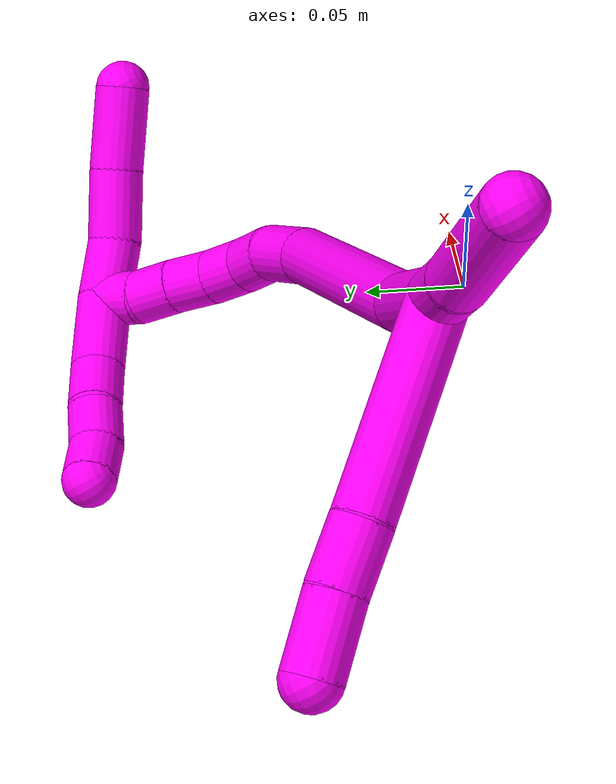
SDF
<sdf version="1.7">
 <world name="default">
  <model name="10">
   <static>0</static>
   <link name="10">
    <collision name="collision-cylinder-e_1_2_8">
     <pose>-0.020222 -0.029259 -0.027686 2.32857 -0.465261 -1.00623</pose>
     <geometry><cylinder><radius>0.0125</radius><length>0.090144</length></cylinder></geometry>
     <surface>
      <friction><ode><mu>1.16</mu><mu2>1.16</mu2><slip1>0</slip1><slip2>0</slip2></ode></friction>
      <contact><ode><kp>1e+06</kp><kd>1</kd><max_vel>0</max_vel><min_depth>0.001</min_depth></ode></contact>
     </surface>
    </collision>
    <visual name="visual-cylinder-e_1_2_8">
     <pose>-0.020222 -0.029259 -0.027686 2.32857 -0.465261 -1.00623</pose>
     <geometry><cylinder><radius>0.0125</radius><length>0.090144</length></cylinder></geometry>
     <material><ambient>1 0 0.964706 1</ambient></material>
    </visual>
    <collision name="collision-cylinder-e_2_8_9">
     <pose>-0.045543 -0.067481 -0.064454 2.36278 -0.38018 -0.876895</pose>
     <geometry><cylinder><radius>0.0125</radius><length>0.027485</length></cylinder></geometry>
     <surface>
      <friction><ode><mu>1.16</mu><mu2>1.16</mu2><slip1>0</slip1><slip2>0</slip2></ode></friction>
      <contact><ode><kp>1e+06</kp><kd>1</kd><max_vel>0</max_vel><min_depth>0.001</min_depth></ode></contact>
     </surface>
    </collision>
    <visual name="visual-cylinder-e_2_8_9">
     <pose>-0.045543 -0.067481 -0.064454 2.36278 -0.38018 -0.876895</pose>
     <geometry><cylinder><radius>0.0125</radius><length>0.027485</length></cylinder></geometry>
     <material><ambient>1 0 0.964706 1</ambient></material>
    </visual>
    <collision name="collision-cylinder-e_3_9_6">
     <pose>-0.056159 -0.087927 -0.083523 2.28668 -0.34777 -0.736062</pose>
     <geometry><cylinder><radius>0.0125</radius><length>0.032371</length></cylinder></geometry>
     <surface>
      <friction><ode><mu>1.16</mu><mu2>1.16</mu2><slip1>0</slip1><slip2>0</slip2></ode></friction>
      <contact><ode><kp>1e+06</kp><kd>1</kd><max_vel>0</max_vel><min_depth>0.001</min_depth></ode></contact>
     </surface>
    </collision>
    <visual name="visual-cylinder-e_3_9_6">
     <pose>-0.056159 -0.087927 -0.083523 2.28668 -0.34777 -0.736062</pose>
     <geometry><cylinder><radius>0.0125</radius><length>0.032371</length></cylinder></geometry>
     <material><ambient>1 0 0.964706 1</ambient></material>
    </visual>
    <collision name="collision-cylinder-e_1_2_10">
     <pose>-0.013634 0.001023 0.007434 -0.136754 -1.06764 0.080912</pose>
     <geometry><cylinder><radius>0.0125</radius><length>0.031127</length></cylinder></geometry>
     <surface>
      <friction><ode><mu>1.16</mu><mu2>1.16</mu2><slip1>0</slip1><slip2>0</slip2></ode></friction>
      <contact><ode><kp>1e+06</kp><kd>1</kd><max_vel>0</max_vel><min_depth>0.001</min_depth></ode></contact>
     </surface>
    </collision>
    <visual name="visual-cylinder-e_1_2_10">
     <pose>-0.013634 0.001023 0.007434 -0.136754 -1.06764 0.080912</pose>
     <geometry><cylinder><radius>0.0125</radius><length>0.031127</length></cylinder></geometry>
     <material><ambient>1 0 0.964706 1</ambient></material>
    </visual>
    <collision name="collision-cylinder-e_2_10_5">
     <pose>-0.054788 0.008218 0.03463 -0.30273 -0.925815 0.151957</pose>
     <geometry><cylinder><radius>0.0125</radius><length>0.068873</length></cylinder></geometry>
     <surface>
      <friction><ode><mu>1.16</mu><mu2>1.16</mu2><slip1>0</slip1><slip2>0</slip2></ode></friction>
      <contact><ode><kp>1e+06</kp><kd>1</kd><max_vel>0</max_vel><min_depth>0.001</min_depth></ode></contact>
     </surface>
    </collision>
    <visual name="visual-cylinder-e_2_10_5">
     <pose>-0.054788 0.008218 0.03463 -0.30273 -0.925815 0.151957</pose>
     <geometry><cylinder><radius>0.0125</radius><length>0.068873</length></cylinder></geometry>
     <material><ambient>1 0 0.964706 1</ambient></material>
    </visual>
    <collision name="collision-cylinder-e_1_2_11">
     <pose>0.027614 0.002338 -0.012645 -2.95877 1.13499 -2.85594</pose>
     <geometry><cylinder><radius>0.0125</radius><length>0.060923</length></cylinder></geometry>
     <surface>
      <friction><ode><mu>1.16</mu><mu2>1.16</mu2><slip1>0</slip1><slip2>0</slip2></ode></friction>
      <contact><ode><kp>1e+06</kp><kd>1</kd><max_vel>0</max_vel><min_depth>0.001</min_depth></ode></contact>
     </surface>
    </collision>
    <visual name="visual-cylinder-e_1_2_11">
     <pose>0.027614 0.002338 -0.012645 -2.95877 1.13499 -2.85594</pose>
     <geometry><cylinder><radius>0.0125</radius><length>0.060923</length></cylinder></geometry>
     <material><ambient>1 0 0.964706 1</ambient></material>
    </visual>
    <collision name="collision-cylinder-e_2_11_12">
     <pose>0.101472 0.024214 -0.049982 -2.47218 0.973002 -1.97823</pose>
     <geometry><cylinder><radius>0.0125</radius><length>0.111891</length></cylinder></geometry>
     <surface>
      <friction><ode><mu>1.16</mu><mu2>1.16</mu2><slip1>0</slip1><slip2>0</slip2></ode></friction>
      <contact><ode><kp>1e+06</kp><kd>1</kd><max_vel>0</max_vel><min_depth>0.001</min_depth></ode></contact>
     </surface>
    </collision>
    <visual name="visual-cylinder-e_2_11_12">
     <pose>0.101472 0.024214 -0.049982 -2.47218 0.973002 -1.97823</pose>
     <geometry><cylinder><radius>0.0125</radius><length>0.111891</length></cylinder></geometry>
     <material><ambient>1 0 0.964706 1</ambient></material>
    </visual>
    <collision name="collision-cylinder-e_3_12_13">
     <pose>0.156855 0.048428 -0.083539 -2.65633 0.73936 -2.00475</pose>
     <geometry><cylinder><radius>0.0125</radius><length>0.027128</length></cylinder></geometry>
     <surface>
      <friction><ode><mu>1.16</mu><mu2>1.16</mu2><slip1>0</slip1><slip2>0</slip2></ode></friction>
      <contact><ode><kp>1e+06</kp><kd>1</kd><max_vel>0</max_vel><min_depth>0.001</min_depth></ode></contact>
     </surface>
    </collision>
    <visual name="visual-cylinder-e_3_12_13">
     <pose>0.156855 0.048428 -0.083539 -2.65633 0.73936 -2.00475</pose>
     <geometry><cylinder><radius>0.0125</radius><length>0.027128</length></cylinder></geometry>
     <material><ambient>1 0 0.964706 1</ambient></material>
    </visual>
    <collision name="collision-cylinder-e_4_13_14">
     <pose>0.172044 0.053824 -0.100362 -3.05114 0.648019 -2.87369</pose>
     <geometry><cylinder><radius>0.0125</radius><length>0.020045</length></cylinder></geometry>
     <surface>
      <friction><ode><mu>1.16</mu><mu2>1.16</mu2><slip1>0</slip1><slip2>0</slip2></ode></friction>
      <contact><ode><kp>1e+06</kp><kd>1</kd><max_vel>0</max_vel><min_depth>0.001</min_depth></ode></contact>
     </surface>
    </collision>
    <visual name="visual-cylinder-e_4_13_14">
     <pose>0.172044 0.053824 -0.100362 -3.05114 0.648019 -2.87369</pose>
     <geometry><cylinder><radius>0.0125</radius><length>0.020045</length></cylinder></geometry>
     <material><ambient>1 0 0.964706 1</ambient></material>
    </visual>
    <collision name="collision-cylinder-e_5_14_15">
     <pose>0.181623 0.05599 -0.117566 -2.98665 0.360607 -2.33638</pose>
     <geometry><cylinder><radius>0.0125</radius><length>0.020002</length></cylinder></geometry>
     <surface>
      <friction><ode><mu>1.16</mu><mu2>1.16</mu2><slip1>0</slip1><slip2>0</slip2></ode></friction>
      <contact><ode><kp>1e+06</kp><kd>1</kd><max_vel>0</max_vel><min_depth>0.001</min_depth></ode></contact>
     </surface>
    </collision>
    <visual name="visual-cylinder-e_5_14_15">
     <pose>0.181623 0.05599 -0.117566 -2.98665 0.360607 -2.33638</pose>
     <geometry><cylinder><radius>0.0125</radius><length>0.020002</length></cylinder></geometry>
     <material><ambient>1 0 0.964706 1</ambient></material>
    </visual>
    <collision name="collision-cylinder-e_6_15_16">
     <pose>0.186915 0.059856 -0.136354 -2.89309 0.177229 -1.23662</pose>
     <geometry><cylinder><radius>0.0125</radius><length>0.020004</length></cylinder></geometry>
     <surface>
      <friction><ode><mu>1.16</mu><mu2>1.16</mu2><slip1>0</slip1><slip2>0</slip2></ode></friction>
      <contact><ode><kp>1e+06</kp><kd>1</kd><max_vel>0</max_vel><min_depth>0.001</min_depth></ode></contact>
     </surface>
    </collision>
    <visual name="visual-cylinder-e_6_15_16">
     <pose>0.186915 0.059856 -0.136354 -2.89309 0.177229 -1.23662</pose>
     <geometry><cylinder><radius>0.0125</radius><length>0.020004</length></cylinder></geometry>
     <material><ambient>1 0 0.964706 1</ambient></material>
    </visual>
    <collision name="collision-cylinder-e_7_16_17">
     <pose>0.190607 0.064148 -0.155531 -2.94986 0.194078 -1.58305</pose>
     <geometry><cylinder><radius>0.0125</radius><length>0.020002</length></cylinder></geometry>
     <surface>
      <friction><ode><mu>1.16</mu><mu2>1.16</mu2><slip1>0</slip1><slip2>0</slip2></ode></friction>
      <contact><ode><kp>1e+06</kp><kd>1</kd><max_vel>0</max_vel><min_depth>0.001</min_depth></ode></contact>
     </surface>
    </collision>
    <visual name="visual-cylinder-e_7_16_17">
     <pose>0.190607 0.064148 -0.155531 -2.94986 0.194078 -1.58305</pose>
     <geometry><cylinder><radius>0.0125</radius><length>0.020002</length></cylinder></geometry>
     <material><ambient>1 0 0.964706 1</ambient></material>
    </visual>
    <collision name="collision-cylinder-e_8_17_1">
     <pose>0.195548 0.069809 -0.173917 -2.7328 0.305854 -1.27871</pose>
     <geometry><cylinder><radius>0.0125</radius><length>0.020005</length></cylinder></geometry>
     <surface>
      <friction><ode><mu>1.16</mu><mu2>1.16</mu2><slip1>0</slip1><slip2>0</slip2></ode></friction>
      <contact><ode><kp>1e+06</kp><kd>1</kd><max_vel>0</max_vel><min_depth>0.001</min_depth></ode></contact>
     </surface>
    </collision>
    <visual name="visual-cylinder-e_8_17_1">
     <pose>0.195548 0.069809 -0.173917 -2.7328 0.305854 -1.27871</pose>
     <geometry><cylinder><radius>0.0125</radius><length>0.020005</length></cylinder></geometry>
     <material><ambient>1 0 0.964706 1</ambient></material>
    </visual>
    <collision name="collision-cylinder-e_1_1_18">
     <pose>0.188267 0.059461 -0.188718 1.97506 -0.589793 -0.862835</pose>
     <geometry><cylinder><radius>0.0125</radius><length>0.037011</length></cylinder></geometry>
     <surface>
      <friction><ode><mu>1.16</mu><mu2>1.16</mu2><slip1>0</slip1><slip2>0</slip2></ode></friction>
      <contact><ode><kp>1e+06</kp><kd>1</kd><max_vel>0</max_vel><min_depth>0.001</min_depth></ode></contact>
     </surface>
    </collision>
    <visual name="visual-cylinder-e_1_1_18">
     <pose>0.188267 0.059461 -0.188718 1.97506 -0.589793 -0.862835</pose>
     <geometry><cylinder><radius>0.0125</radius><length>0.037011</length></cylinder></geometry>
     <material><ambient>1 0 0.964706 1</ambient></material>
    </visual>
    <collision name="collision-cylinder-e_2_18_19">
     <pose>0.170063 0.037694 -0.196792 1.83031 -0.786637 -0.98946</pose>
     <geometry><cylinder><radius>0.0125</radius><length>0.02235</length></cylinder></geometry>
     <surface>
      <friction><ode><mu>1.16</mu><mu2>1.16</mu2><slip1>0</slip1><slip2>0</slip2></ode></friction>
      <contact><ode><kp>1e+06</kp><kd>1</kd><max_vel>0</max_vel><min_depth>0.001</min_depth></ode></contact>
     </surface>
    </collision>
    <visual name="visual-cylinder-e_2_18_19">
     <pose>0.170063 0.037694 -0.196792 1.83031 -0.786637 -0.98946</pose>
     <geometry><cylinder><radius>0.0125</radius><length>0.02235</length></cylinder></geometry>
     <material><ambient>1 0 0.964706 1</ambient></material>
    </visual>
    <collision name="collision-cylinder-e_3_19_20">
     <pose>0.156419 0.022059 -0.200744 1.80687 -0.608013 -0.757827</pose>
     <geometry><cylinder><radius>0.0125</radius><length>0.020068</length></cylinder></geometry>
     <surface>
      <friction><ode><mu>1.16</mu><mu2>1.16</mu2><slip1>0</slip1><slip2>0</slip2></ode></friction>
      <contact><ode><kp>1e+06</kp><kd>1</kd><max_vel>0</max_vel><min_depth>0.001</min_depth></ode></contact>
     </surface>
    </collision>
    <visual name="visual-cylinder-e_3_19_20">
     <pose>0.156419 0.022059 -0.200744 1.80687 -0.608013 -0.757827</pose>
     <geometry><cylinder><radius>0.0125</radius><length>0.020068</length></cylinder></geometry>
     <material><ambient>1 0 0.964706 1</ambient></material>
    </visual>
    <collision name="collision-cylinder-e_4_20_4">
     <pose>0.142592 0.00811 -0.204895 1.92911 -0.906058 -1.22428</pose>
     <geometry><cylinder><radius>0.0125</radius><length>0.020571</length></cylinder></geometry>
     <surface>
      <friction><ode><mu>1.16</mu><mu2>1.16</mu2><slip1>0</slip1><slip2>0</slip2></ode></friction>
      <contact><ode><kp>1e+06</kp><kd>1</kd><max_vel>0</max_vel><min_depth>0.001</min_depth></ode></contact>
     </surface>
    </collision>
    <visual name="visual-cylinder-e_4_20_4">
     <pose>0.142592 0.00811 -0.204895 1.92911 -0.906058 -1.22428</pose>
     <geometry><cylinder><radius>0.0125</radius><length>0.020571</length></cylinder></geometry>
     <material><ambient>1 0 0.964706 1</ambient></material>
    </visual>
    <collision name="collision-cylinder-e_1_1_21">
     <pose>0.203145 0.084499 -0.175368 -0.980556 0.336282 -0.180707</pose>
     <geometry><cylinder><radius>0.0125</radius><length>0.027792</length></cylinder></geometry>
     <surface>
      <friction><ode><mu>1.16</mu><mu2>1.16</mu2><slip1>0</slip1><slip2>0</slip2></ode></friction>
      <contact><ode><kp>1e+06</kp><kd>1</kd><max_vel>0</max_vel><min_depth>0.001</min_depth></ode></contact>
     </surface>
    </collision>
    <visual name="visual-cylinder-e_1_1_21">
     <pose>0.203145 0.084499 -0.175368 -0.980556 0.336282 -0.180707</pose>
     <geometry><cylinder><radius>0.0125</radius><length>0.027792</length></cylinder></geometry>
     <material><ambient>1 0 0.964706 1</ambient></material>
    </visual>
    <collision name="collision-cylinder-e_2_21_22">
     <pose>0.209782 0.109977 -0.160201 -1.07602 0.123189 -0.07357</pose>
     <geometry><cylinder><radius>0.0125</radius><length>0.033386</length></cylinder></geometry>
     <surface>
      <friction><ode><mu>1.16</mu><mu2>1.16</mu2><slip1>0</slip1><slip2>0</slip2></ode></friction>
      <contact><ode><kp>1e+06</kp><kd>1</kd><max_vel>0</max_vel><min_depth>0.001</min_depth></ode></contact>
     </surface>
    </collision>
    <visual name="visual-cylinder-e_2_21_22">
     <pose>0.209782 0.109977 -0.160201 -1.07602 0.123189 -0.07357</pose>
     <geometry><cylinder><radius>0.0125</radius><length>0.033386</length></cylinder></geometry>
     <material><ambient>1 0 0.964706 1</ambient></material>
    </visual>
    <collision name="collision-cylinder-e_3_22_3">
     <pose>0.213078 0.140841 -0.141843 -0.998467 0.064189 -0.035011</pose>
     <geometry><cylinder><radius>0.0125</radius><length>0.038821</length></cylinder></geometry>
     <surface>
      <friction><ode><mu>1.16</mu><mu2>1.16</mu2><slip1>0</slip1><slip2>0</slip2></ode></friction>
      <contact><ode><kp>1e+06</kp><kd>1</kd><max_vel>0</max_vel><min_depth>0.001</min_depth></ode></contact>
     </surface>
    </collision>
    <visual name="visual-cylinder-e_3_22_3">
     <pose>0.213078 0.140841 -0.141843 -0.998467 0.064189 -0.035011</pose>
     <geometry><cylinder><radius>0.0125</radius><length>0.038821</length></cylinder></geometry>
     <material><ambient>1 0 0.964706 1</ambient></material>
    </visual>
    <collision name="collision-sphere-3">
     <pose>0.214323 0.157125 -0.131352 0 -0 0</pose>
     <geometry><sphere><radius>0.0125</radius></sphere></geometry>
     <surface>
      <friction><ode><mu>1.16</mu><mu2>1.16</mu2><slip1>0</slip1><slip2>0</slip2></ode></friction>
      <contact><ode><kp>1e+06</kp><kd>1</kd><max_vel>0</max_vel><min_depth>0.001</min_depth></ode></contact>
     </surface>
    </collision>
    <visual name="visual-sphere-3">
     <pose>0.214323 0.157125 -0.131352 0 -0 0</pose>
     <geometry><sphere><radius>0.0125</radius></sphere></geometry>
     <material><ambient>1 0 0.964706 1</ambient></material>
    </visual>
    <collision name="collision-sphere-22">
     <pose>0.211833 0.124557 -0.152334 0 -0 0</pose>
     <geometry><sphere><radius>0.0125</radius></sphere></geometry>
     <surface>
      <friction><ode><mu>1.16</mu><mu2>1.16</mu2><slip1>0</slip1><slip2>0</slip2></ode></friction>
      <contact><ode><kp>1e+06</kp><kd>1</kd><max_vel>0</max_vel><min_depth>0.001</min_depth></ode></contact>
     </surface>
    </collision>
    <visual name="visual-sphere-22">
     <pose>0.211833 0.124557 -0.152334 0 -0 0</pose>
     <geometry><sphere><radius>0.0125</radius></sphere></geometry>
     <material><ambient>1 0 0.964706 1</ambient></material>
    </visual>
    <collision name="collision-sphere-21">
     <pose>0.20773 0.095397 -0.168067 0 -0 0</pose>
     <geometry><sphere><radius>0.0125</radius></sphere></geometry>
     <surface>
      <friction><ode><mu>1.16</mu><mu2>1.16</mu2><slip1>0</slip1><slip2>0</slip2></ode></friction>
      <contact><ode><kp>1e+06</kp><kd>1</kd><max_vel>0</max_vel><min_depth>0.001</min_depth></ode></contact>
     </surface>
    </collision>
    <visual name="visual-sphere-21">
     <pose>0.20773 0.095397 -0.168067 0 -0 0</pose>
     <geometry><sphere><radius>0.0125</radius></sphere></geometry>
     <material><ambient>1 0 0.964706 1</ambient></material>
    </visual>
    <collision name="collision-sphere-4">
     <pose>0.134496 0.002168 -0.20712 0 -0 0</pose>
     <geometry><sphere><radius>0.0125</radius></sphere></geometry>
     <surface>
      <friction><ode><mu>1.16</mu><mu2>1.16</mu2><slip1>0</slip1><slip2>0</slip2></ode></friction>
      <contact><ode><kp>1e+06</kp><kd>1</kd><max_vel>0</max_vel><min_depth>0.001</min_depth></ode></contact>
     </surface>
    </collision>
    <visual name="visual-sphere-4">
     <pose>0.134496 0.002168 -0.20712 0 -0 0</pose>
     <geometry><sphere><radius>0.0125</radius></sphere></geometry>
     <material><ambient>1 0 0.964706 1</ambient></material>
    </visual>
    <collision name="collision-sphere-20">
     <pose>0.150687 0.014051 -0.20267 0 -0 0</pose>
     <geometry><sphere><radius>0.0125</radius></sphere></geometry>
     <surface>
      <friction><ode><mu>1.16</mu><mu2>1.16</mu2><slip1>0</slip1><slip2>0</slip2></ode></friction>
      <contact><ode><kp>1e+06</kp><kd>1</kd><max_vel>0</max_vel><min_depth>0.001</min_depth></ode></contact>
     </surface>
    </collision>
    <visual name="visual-sphere-20">
     <pose>0.150687 0.014051 -0.20267 0 -0 0</pose>
     <geometry><sphere><radius>0.0125</radius></sphere></geometry>
     <material><ambient>1 0 0.964706 1</ambient></material>
    </visual>
    <collision name="collision-sphere-5">
     <pose>-0.082306 0.01439 0.054392 0 -0 0</pose>
     <geometry><sphere><radius>0.0125</radius></sphere></geometry>
     <surface>
      <friction><ode><mu>1.16</mu><mu2>1.16</mu2><slip1>0</slip1><slip2>0</slip2></ode></friction>
      <contact><ode><kp>1e+06</kp><kd>1</kd><max_vel>0</max_vel><min_depth>0.001</min_depth></ode></contact>
     </surface>
    </collision>
    <visual name="visual-sphere-5">
     <pose>-0.082306 0.01439 0.054392 0 -0 0</pose>
     <geometry><sphere><radius>0.0125</radius></sphere></geometry>
     <material><ambient>1 0 0.964706 1</ambient></material>
    </visual>
    <collision name="collision-sphere-10">
     <pose>-0.027269 0.002046 0.014869 0 -0 0</pose>
     <geometry><sphere><radius>0.0125</radius></sphere></geometry>
     <surface>
      <friction><ode><mu>1.16</mu><mu2>1.16</mu2><slip1>0</slip1><slip2>0</slip2></ode></friction>
      <contact><ode><kp>1e+06</kp><kd>1</kd><max_vel>0</max_vel><min_depth>0.001</min_depth></ode></contact>
     </surface>
    </collision>
    <visual name="visual-sphere-10">
     <pose>-0.027269 0.002046 0.014869 0 -0 0</pose>
     <geometry><sphere><radius>0.0125</radius></sphere></geometry>
     <material><ambient>1 0 0.964706 1</ambient></material>
    </visual>
    <collision name="collision-sphere-6">
     <pose>-0.061675 -0.099408 -0.093509 0 -0 0</pose>
     <geometry><sphere><radius>0.0125</radius></sphere></geometry>
     <surface>
      <friction><ode><mu>1.16</mu><mu2>1.16</mu2><slip1>0</slip1><slip2>0</slip2></ode></friction>
      <contact><ode><kp>1e+06</kp><kd>1</kd><max_vel>0</max_vel><min_depth>0.001</min_depth></ode></contact>
     </surface>
    </collision>
    <visual name="visual-sphere-6">
     <pose>-0.061675 -0.099408 -0.093509 0 -0 0</pose>
     <geometry><sphere><radius>0.0125</radius></sphere></geometry>
     <material><ambient>1 0 0.964706 1</ambient></material>
    </visual>
    <collision name="collision-sphere-9">
     <pose>-0.050643 -0.076445 -0.073537 0 -0 0</pose>
     <geometry><sphere><radius>0.0125</radius></sphere></geometry>
     <surface>
      <friction><ode><mu>1.16</mu><mu2>1.16</mu2><slip1>0</slip1><slip2>0</slip2></ode></friction>
      <contact><ode><kp>1e+06</kp><kd>1</kd><max_vel>0</max_vel><min_depth>0.001</min_depth></ode></contact>
     </surface>
    </collision>
    <visual name="visual-sphere-9">
     <pose>-0.050643 -0.076445 -0.073537 0 -0 0</pose>
     <geometry><sphere><radius>0.0125</radius></sphere></geometry>
     <material><ambient>1 0 0.964706 1</ambient></material>
    </visual>
    <collision name="collision-sphere-2">
     <geometry><sphere><radius>0.0125</radius></sphere></geometry>
     <surface>
      <friction><ode><mu>1.16</mu><mu2>1.16</mu2><slip1>0</slip1><slip2>0</slip2></ode></friction>
      <contact><ode><kp>1e+06</kp><kd>1</kd><max_vel>0</max_vel><min_depth>0.001</min_depth></ode></contact>
     </surface>
    </collision>
    <visual name="visual-sphere-2">
     <geometry><sphere><radius>0.0125</radius></sphere></geometry>
     <material><ambient>1 0 0.964706 1</ambient></material>
    </visual>
    <collision name="collision-sphere-19">
     <pose>0.162151 0.030066 -0.198817 0 -0 0</pose>
     <geometry><sphere><radius>0.0125</radius></sphere></geometry>
     <surface>
      <friction><ode><mu>1.16</mu><mu2>1.16</mu2><slip1>0</slip1><slip2>0</slip2></ode></friction>
      <contact><ode><kp>1e+06</kp><kd>1</kd><max_vel>0</max_vel><min_depth>0.001</min_depth></ode></contact>
     </surface>
    </collision>
    <visual name="visual-sphere-19">
     <pose>0.162151 0.030066 -0.198817 0 -0 0</pose>
     <geometry><sphere><radius>0.0125</radius></sphere></geometry>
     <material><ambient>1 0 0.964706 1</ambient></material>
    </visual>
    <collision name="collision-sphere-8">
     <pose>-0.040444 -0.058518 -0.055371 0 -0 0</pose>
     <geometry><sphere><radius>0.0125</radius></sphere></geometry>
     <surface>
      <friction><ode><mu>1.16</mu><mu2>1.16</mu2><slip1>0</slip1><slip2>0</slip2></ode></friction>
      <contact><ode><kp>1e+06</kp><kd>1</kd><max_vel>0</max_vel><min_depth>0.001</min_depth></ode></contact>
     </surface>
    </collision>
    <visual name="visual-sphere-8">
     <pose>-0.040444 -0.058518 -0.055371 0 -0 0</pose>
     <geometry><sphere><radius>0.0125</radius></sphere></geometry>
     <material><ambient>1 0 0.964706 1</ambient></material>
    </visual>
    <collision name="collision-sphere-11">
     <pose>0.055229 0.004676 -0.02529 0 -0 0</pose>
     <geometry><sphere><radius>0.0125</radius></sphere></geometry>
     <surface>
      <friction><ode><mu>1.16</mu><mu2>1.16</mu2><slip1>0</slip1><slip2>0</slip2></ode></friction>
      <contact><ode><kp>1e+06</kp><kd>1</kd><max_vel>0</max_vel><min_depth>0.001</min_depth></ode></contact>
     </surface>
    </collision>
    <visual name="visual-sphere-11">
     <pose>0.055229 0.004676 -0.02529 0 -0 0</pose>
     <geometry><sphere><radius>0.0125</radius></sphere></geometry>
     <material><ambient>1 0 0.964706 1</ambient></material>
    </visual>
    <collision name="collision-sphere-12">
     <pose>0.147716 0.043753 -0.074673 0 -0 0</pose>
     <geometry><sphere><radius>0.0125</radius></sphere></geometry>
     <surface>
      <friction><ode><mu>1.16</mu><mu2>1.16</mu2><slip1>0</slip1><slip2>0</slip2></ode></friction>
      <contact><ode><kp>1e+06</kp><kd>1</kd><max_vel>0</max_vel><min_depth>0.001</min_depth></ode></contact>
     </surface>
    </collision>
    <visual name="visual-sphere-12">
     <pose>0.147716 0.043753 -0.074673 0 -0 0</pose>
     <geometry><sphere><radius>0.0125</radius></sphere></geometry>
     <material><ambient>1 0 0.964706 1</ambient></material>
    </visual>
    <collision name="collision-sphere-13">
     <pose>0.165995 0.053103 -0.092404 0 -0 0</pose>
     <geometry><sphere><radius>0.0125</radius></sphere></geometry>
     <surface>
      <friction><ode><mu>1.16</mu><mu2>1.16</mu2><slip1>0</slip1><slip2>0</slip2></ode></friction>
      <contact><ode><kp>1e+06</kp><kd>1</kd><max_vel>0</max_vel><min_depth>0.001</min_depth></ode></contact>
     </surface>
    </collision>
    <visual name="visual-sphere-13">
     <pose>0.165995 0.053103 -0.092404 0 -0 0</pose>
     <geometry><sphere><radius>0.0125</radius></sphere></geometry>
     <material><ambient>1 0 0.964706 1</ambient></material>
    </visual>
    <collision name="collision-sphere-14">
     <pose>0.178094 0.054546 -0.10832 0 -0 0</pose>
     <geometry><sphere><radius>0.0125</radius></sphere></geometry>
     <surface>
      <friction><ode><mu>1.16</mu><mu2>1.16</mu2><slip1>0</slip1><slip2>0</slip2></ode></friction>
      <contact><ode><kp>1e+06</kp><kd>1</kd><max_vel>0</max_vel><min_depth>0.001</min_depth></ode></contact>
     </surface>
    </collision>
    <visual name="visual-sphere-14">
     <pose>0.178094 0.054546 -0.10832 0 -0 0</pose>
     <geometry><sphere><radius>0.0125</radius></sphere></geometry>
     <material><ambient>1 0 0.964706 1</ambient></material>
    </visual>
    <collision name="collision-sphere-15">
     <pose>0.185151 0.057435 -0.126811 0 -0 0</pose>
     <geometry><sphere><radius>0.0125</radius></sphere></geometry>
     <surface>
      <friction><ode><mu>1.16</mu><mu2>1.16</mu2><slip1>0</slip1><slip2>0</slip2></ode></friction>
      <contact><ode><kp>1e+06</kp><kd>1</kd><max_vel>0</max_vel><min_depth>0.001</min_depth></ode></contact>
     </surface>
    </collision>
    <visual name="visual-sphere-15">
     <pose>0.185151 0.057435 -0.126811 0 -0 0</pose>
     <geometry><sphere><radius>0.0125</radius></sphere></geometry>
     <material><ambient>1 0 0.964706 1</ambient></material>
    </visual>
    <collision name="collision-sphere-16">
     <pose>0.188678 0.062278 -0.145897 0 -0 0</pose>
     <geometry><sphere><radius>0.0125</radius></sphere></geometry>
     <surface>
      <friction><ode><mu>1.16</mu><mu2>1.16</mu2><slip1>0</slip1><slip2>0</slip2></ode></friction>
      <contact><ode><kp>1e+06</kp><kd>1</kd><max_vel>0</max_vel><min_depth>0.001</min_depth></ode></contact>
     </surface>
    </collision>
    <visual name="visual-sphere-16">
     <pose>0.188678 0.062278 -0.145897 0 -0 0</pose>
     <geometry><sphere><radius>0.0125</radius></sphere></geometry>
     <material><ambient>1 0 0.964706 1</ambient></material>
    </visual>
    <collision name="collision-sphere-17">
     <pose>0.192536 0.066018 -0.165164 0 -0 0</pose>
     <geometry><sphere><radius>0.0125</radius></sphere></geometry>
     <surface>
      <friction><ode><mu>1.16</mu><mu2>1.16</mu2><slip1>0</slip1><slip2>0</slip2></ode></friction>
      <contact><ode><kp>1e+06</kp><kd>1</kd><max_vel>0</max_vel><min_depth>0.001</min_depth></ode></contact>
     </surface>
    </collision>
    <visual name="visual-sphere-17">
     <pose>0.192536 0.066018 -0.165164 0 -0 0</pose>
     <geometry><sphere><radius>0.0125</radius></sphere></geometry>
     <material><ambient>1 0 0.964706 1</ambient></material>
    </visual>
    <collision name="collision-sphere-1">
     <pose>0.198559 0.073601 -0.182669 0 -0 0</pose>
     <geometry><sphere><radius>0.0125</radius></sphere></geometry>
     <surface>
      <friction><ode><mu>1.16</mu><mu2>1.16</mu2><slip1>0</slip1><slip2>0</slip2></ode></friction>
      <contact><ode><kp>1e+06</kp><kd>1</kd><max_vel>0</max_vel><min_depth>0.001</min_depth></ode></contact>
     </surface>
    </collision>
    <visual name="visual-sphere-1">
     <pose>0.198559 0.073601 -0.182669 0 -0 0</pose>
     <geometry><sphere><radius>0.0125</radius></sphere></geometry>
     <material><ambient>1 0 0.964706 1</ambient></material>
    </visual>
    <collision name="collision-sphere-18">
     <pose>0.177974 0.045322 -0.194767 0 -0 0</pose>
     <geometry><sphere><radius>0.0125</radius></sphere></geometry>
     <surface>
      <friction><ode><mu>1.16</mu><mu2>1.16</mu2><slip1>0</slip1><slip2>0</slip2></ode></friction>
      <contact><ode><kp>1e+06</kp><kd>1</kd><max_vel>0</max_vel><min_depth>0.001</min_depth></ode></contact>
     </surface>
    </collision>
    <visual name="visual-sphere-18">
     <pose>0.177974 0.045322 -0.194767 0 -0 0</pose>
     <geometry><sphere><radius>0.0125</radius></sphere></geometry>
     <material><ambient>1 0 0.964706 1</ambient></material>
    </visual>
    <inertial>
     <pose>0.086012 0.024855 -0.082693 0 -0 0</pose>
     <mass>0.75</mass>
     <inertia>
      <ixx>-9.4e-05</ixx>
      <ixy>0</ixy>
      <ixz>0</ixz>
      <iyy>2.4e-05</iyy>
      <iyz>0</iyz>
      <izz>-8.5e-05</izz>
     </inertia>
    </inertial>
   </link>
   <pose>-0.28232 0.062556 0.197338 0.924025 0.503367 -0.382872</pose>
  </model>
 </world>
</sdf>
